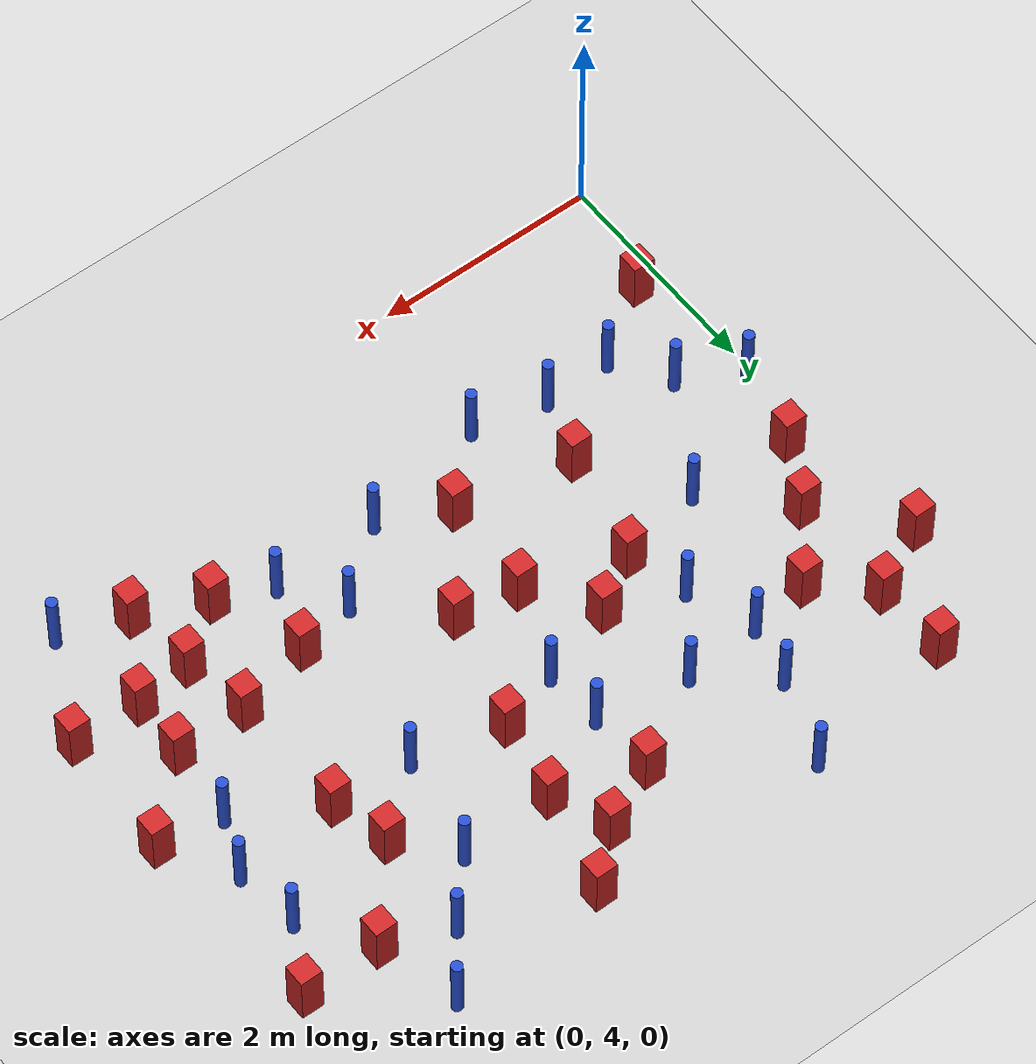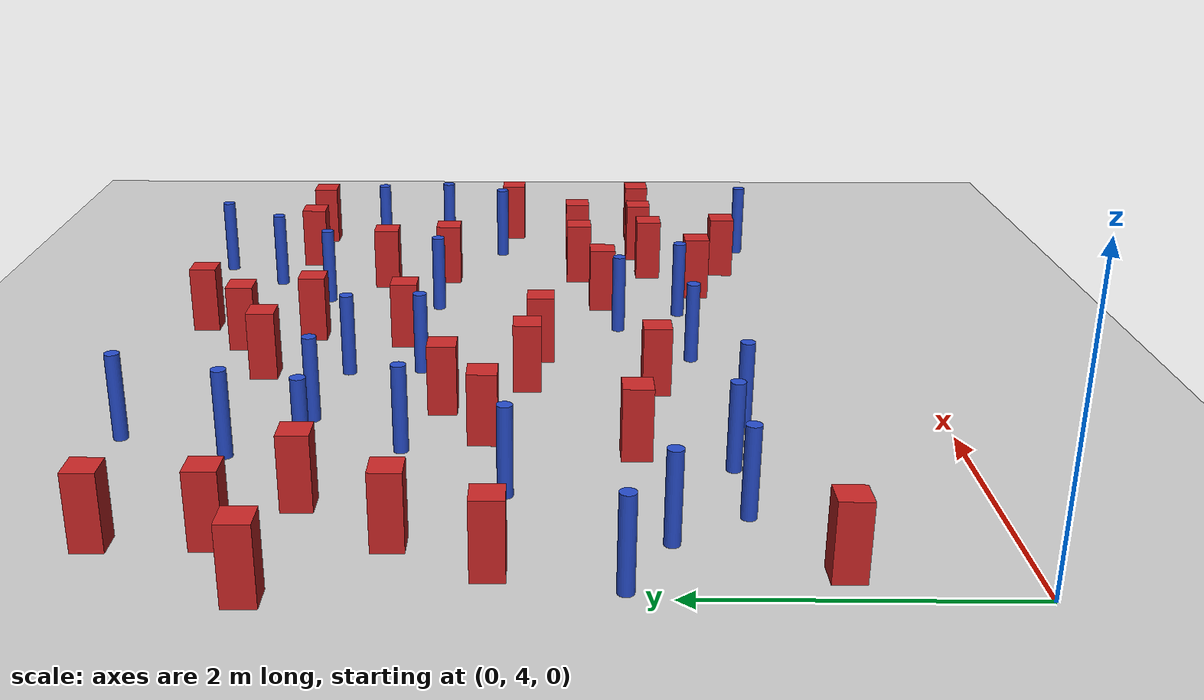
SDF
<sdf version="1.6">
 <world name="default">
  <model name="ground_plane">
   <static>1</static>
   <link name="link">
    <collision name="collision">
     <geometry><plane><normal>0 0 1</normal><size>100 100</size></plane></geometry>
     <surface><friction><ode><mu>100</mu><mu2>50</mu2></ode></friction></surface>
    </collision>
    <visual name="visual">
     <cast_shadows>0</cast_shadows>
     <geometry><plane><normal>0 0 1</normal><size>100 100</size></plane></geometry>
     <material>
      <ambient>1.0 1.0 1.0 1.0</ambient>
      <diffuse>0.8 0.8 0.8 1.0</diffuse>
      <specular>0.01 0.01 0.01 1.000000</specular>
     </material>
    </visual>
   </link>
  </model>
  <model name="square_post_obstacle1">
   <static>true</static>
   <pose>5.37750317819 5.17159049215 1.91545236811e-07 -7.35059704564e-06 1.12565212e-07 2.39332434364e-05</pose>
   <link name="link">
    <pose>0 0 0.25 0 -0 0</pose>
    <inertial>
     <mass>100</mass>
     <inertia>
      <ixx>0.166667</ixx>
      <ixy>0</ixy>
      <ixz>0</ixz>
      <iyy>0.166667</iyy>
      <iyz>0</iyz>
      <izz>0.166667</izz>
     </inertia>
    </inertial>
    <collision name="collision"><geometry><box><size>.2 .2 .5</size></box></geometry></collision>
    <visual name="visual">
     <geometry><box><size>.2 .2 .5</size></box></geometry>
     <material>
      <script><name>Gazebo/Red</name><uri>file://media/materials/scripts/gazebo.material</uri></script>
     </material>
    </visual>
   </link>
  </model>
  <model name="square_post_obstacle14">
   <static>true</static>
   <pose>0.547198968138 9.23532969823 1.91545236811e-07 -7.35059704564e-06 1.12565212e-07 2.39332434364e-05</pose>
   <link name="link">
    <pose>0 0 0.25 0 -0 0</pose>
    <inertial>
     <mass>100</mass>
     <inertia>
      <ixx>0.166667</ixx>
      <ixy>0</ixy>
      <ixz>0</ixz>
      <iyy>0.166667</iyy>
      <iyz>0</iyz>
      <izz>0.166667</izz>
     </inertia>
    </inertial>
    <collision name="collision"><geometry><box><size>.2 .2 .5</size></box></geometry></collision>
    <visual name="visual">
     <geometry><box><size>.2 .2 .5</size></box></geometry>
     <material>
      <script><name>Gazebo/Red</name><uri>file://media/materials/scripts/gazebo.material</uri></script>
     </material>
    </visual>
   </link>
  </model>
  <model name="pole_obstacle29">
   <static>true</static>
   <pose>0.586297997548 5.96548504532 7.38925637345e-09 -8.471706928e-08 1.24976765086e-08 -1.74513093015e-07</pose>
   <link name="link">
    <pose>0 0 0.3 0 -0 0</pose>
    <inertial>
     <mass>1</mass>
     <inertia><ixx>0.145833</ixx><ixy>0</ixy><ixz>0</ixz><iyy>0.145833</iyy><iyz>0</iyz><izz>0.125</izz></inertia>
    </inertial>
    <collision name="collision">
     <geometry><cylinder><radius>0.05</radius><length>.6</length></cylinder></geometry>
    </collision>
    <visual name="visual">
     <geometry><cylinder><radius>0.05</radius><length>.6</length></cylinder></geometry>
     <material>
      <script><name>Gazebo/Blue</name><uri>file://media/materials/scripts/gazebo.material</uri></script>
     </material>
    </visual>
   </link>
  </model>
  <model name="square_post_obstacle22">
   <static>true</static>
   <pose>3.36921713333 6.72272128164 1.91545236811e-07 -7.35059704564e-06 1.12565212e-07 2.39332434364e-05</pose>
   <link name="link">
    <pose>0 0 0.25 0 -0 0</pose>
    <inertial>
     <mass>100</mass>
     <inertia>
      <ixx>0.166667</ixx>
      <ixy>0</ixy>
      <ixz>0</ixz>
      <iyy>0.166667</iyy>
      <iyz>0</iyz>
      <izz>0.166667</izz>
     </inertia>
    </inertial>
    <collision name="collision"><geometry><box><size>.2 .2 .5</size></box></geometry></collision>
    <visual name="visual">
     <geometry><box><size>.2 .2 .5</size></box></geometry>
     <material>
      <script><name>Gazebo/Red</name><uri>file://media/materials/scripts/gazebo.material</uri></script>
     </material>
    </visual>
   </link>
  </model>
  <model name="pole_obstacle37">
   <static>true</static>
   <pose>1.77282647721 7.61099032757 7.38925637345e-09 -8.47170692799e-08 1.24976765033e-08 -1.74513093018e-07</pose>
   <link name="link">
    <pose>0 0 0.3 0 -0 0</pose>
    <inertial>
     <mass>1</mass>
     <inertia><ixx>0.145833</ixx><ixy>0</ixy><ixz>0</ixz><iyy>0.145833</iyy><iyz>0</iyz><izz>0.125</izz></inertia>
    </inertial>
    <collision name="collision">
     <geometry><cylinder><radius>0.05</radius><length>.6</length></cylinder></geometry>
    </collision>
    <visual name="visual">
     <geometry><cylinder><radius>0.05</radius><length>.6</length></cylinder></geometry>
     <material>
      <script><name>Gazebo/Blue</name><uri>file://media/materials/scripts/gazebo.material</uri></script>
     </material>
    </visual>
   </link>
  </model>
  <model name="pole_obstacle42">
   <static>true</static>
   <pose>1.16365076486 6.92392771209 7.38925637345e-09 -8.47170692799e-08 1.24976765033e-08 -1.74513093018e-07</pose>
   <link name="link">
    <pose>0 0 0.3 0 -0 0</pose>
    <inertial>
     <mass>1</mass>
     <inertia><ixx>0.145833</ixx><ixy>0</ixy><ixz>0</ixz><iyy>0.145833</iyy><iyz>0</iyz><izz>0.125</izz></inertia>
    </inertial>
    <collision name="collision">
     <geometry><cylinder><radius>0.05</radius><length>.6</length></cylinder></geometry>
    </collision>
    <visual name="visual">
     <geometry><cylinder><radius>0.05</radius><length>.6</length></cylinder></geometry>
     <material>
      <script><name>Gazebo/Blue</name><uri>file://media/materials/scripts/gazebo.material</uri></script>
     </material>
    </visual>
   </link>
  </model>
  <model name="square_post_obstacle39">
   <static>true</static>
   <pose>3.58698922578 8.97844515525 1.91545236811e-07 -7.35059704564e-06 1.12565212e-07 2.39332434364e-05</pose>
   <link name="link">
    <pose>0 0 0.25 0 -0 0</pose>
    <inertial>
     <mass>100</mass>
     <inertia>
      <ixx>0.166667</ixx>
      <ixy>0</ixy>
      <ixz>0</ixz>
      <iyy>0.166667</iyy>
      <iyz>0</iyz>
      <izz>0.166667</izz>
     </inertia>
    </inertial>
    <collision name="collision"><geometry><box><size>.2 .2 .5</size></box></geometry></collision>
    <visual name="visual">
     <geometry><box><size>.2 .2 .5</size></box></geometry>
     <material>
      <script><name>Gazebo/Red</name><uri>file://media/materials/scripts/gazebo.material</uri></script>
     </material>
    </visual>
   </link>
  </model>
  <model name="pole_obstacle49">
   <static>true</static>
   <pose>6.08698520354 7.57605589199 7.38925637345e-09 -8.47170692796e-08 1.24976764786e-08 -1.74513093032e-07</pose>
   <link name="link">
    <pose>0 0 0.3 0 -0 0</pose>
    <inertial>
     <mass>1</mass>
     <inertia><ixx>0.145833</ixx><ixy>0</ixy><ixz>0</ixz><iyy>0.145833</iyy><iyz>0</iyz><izz>0.125</izz></inertia>
    </inertial>
    <collision name="collision">
     <geometry><cylinder><radius>0.05</radius><length>.6</length></cylinder></geometry>
    </collision>
    <visual name="visual">
     <geometry><cylinder><radius>0.05</radius><length>.6</length></cylinder></geometry>
     <material>
      <script><name>Gazebo/Blue</name><uri>file://media/materials/scripts/gazebo.material</uri></script>
     </material>
    </visual>
   </link>
  </model>
  <model name="pole_obstacle51">
   <static>true</static>
   <pose>2.24795448103 8.24911606674 7.38925637345e-09 -8.47170692793e-08 1.24976764408e-08 -1.74513093041e-07</pose>
   <link name="link">
    <pose>0 0 0.3 0 -0 0</pose>
    <inertial>
     <mass>1</mass>
     <inertia><ixx>0.145833</ixx><ixy>0</ixy><ixz>0</ixz><iyy>0.145833</iyy><iyz>0</iyz><izz>0.125</izz></inertia>
    </inertial>
    <collision name="collision">
     <geometry><cylinder><radius>0.05</radius><length>.6</length></cylinder></geometry>
    </collision>
    <visual name="visual">
     <geometry><cylinder><radius>0.05</radius><length>.6</length></cylinder></geometry>
     <material>
      <script><name>Gazebo/Blue</name><uri>file://media/materials/scripts/gazebo.material</uri></script>
     </material>
    </visual>
   </link>
  </model>
  <model name="pole_obstacle69">
   <static>true</static>
   <pose>5.95983168452 4.94907895417 7.38925637345e-09 -8.47170692796e-08 1.24976764786e-08 -1.74513093032e-07</pose>
   <link name="link">
    <pose>0 0 0.3 0 -0 0</pose>
    <inertial>
     <mass>1</mass>
     <inertia><ixx>0.145833</ixx><ixy>0</ixy><ixz>0</ixz><iyy>0.145833</iyy><iyz>0</iyz><izz>0.125</izz></inertia>
    </inertial>
    <collision name="collision">
     <geometry><cylinder><radius>0.05</radius><length>.6</length></cylinder></geometry>
    </collision>
    <visual name="visual">
     <geometry><cylinder><radius>0.05</radius><length>.6</length></cylinder></geometry>
     <material>
      <script><name>Gazebo/Blue</name><uri>file://media/materials/scripts/gazebo.material</uri></script>
     </material>
    </visual>
   </link>
  </model>
  <model name="square_post_obstacle61">
   <static>true</static>
   <pose>4.00225368192 9.34497348622 1.91545236811e-07 -7.35059704564e-06 1.12565212e-07 2.39332434364e-05</pose>
   <link name="link">
    <pose>0 0 0.25 0 -0 0</pose>
    <inertial>
     <mass>100</mass>
     <inertia>
      <ixx>0.166667</ixx>
      <ixy>0</ixy>
      <ixz>0</ixz>
      <iyy>0.166667</iyy>
      <iyz>0</iyz>
      <izz>0.166667</izz>
     </inertia>
    </inertial>
    <collision name="collision"><geometry><box><size>.2 .2 .5</size></box></geometry></collision>
    <visual name="visual">
     <geometry><box><size>.2 .2 .5</size></box></geometry>
     <material>
      <script><name>Gazebo/Red</name><uri>file://media/materials/scripts/gazebo.material</uri></script>
     </material>
    </visual>
   </link>
  </model>
  <model name="square_post_obstacle62">
   <static>true</static>
   <pose>5.02789357225 8.0316241238 1.91545236811e-07 -7.35059704564e-06 1.12565212e-07 2.39332434364e-05</pose>
   <link name="link">
    <pose>0 0 0.25 0 -0 0</pose>
    <inertial>
     <mass>100</mass>
     <inertia>
      <ixx>0.166667</ixx>
      <ixy>0</ixy>
      <ixz>0</ixz>
      <iyy>0.166667</iyy>
      <iyz>0</iyz>
      <izz>0.166667</izz>
     </inertia>
    </inertial>
    <collision name="collision"><geometry><box><size>.2 .2 .5</size></box></geometry></collision>
    <visual name="visual">
     <geometry><box><size>.2 .2 .5</size></box></geometry>
     <material>
      <script><name>Gazebo/Red</name><uri>file://media/materials/scripts/gazebo.material</uri></script>
     </material>
    </visual>
   </link>
  </model>
  <model name="pole_obstacle77">
   <static>true</static>
   <pose>4.61966512829 8.47260502739 7.38925637345e-09 -8.471706928e-08 1.24976765081e-08 -1.74513093015e-07</pose>
   <link name="link">
    <pose>0 0 0.3 0 -0 0</pose>
    <inertial>
     <mass>1</mass>
     <inertia><ixx>0.145833</ixx><ixy>0</ixy><ixz>0</ixz><iyy>0.145833</iyy><iyz>0</iyz><izz>0.125</izz></inertia>
    </inertial>
    <collision name="collision">
     <geometry><cylinder><radius>0.05</radius><length>.6</length></cylinder></geometry>
    </collision>
    <visual name="visual">
     <geometry><cylinder><radius>0.05</radius><length>.6</length></cylinder></geometry>
     <material>
      <script><name>Gazebo/Blue</name><uri>file://media/materials/scripts/gazebo.material</uri></script>
     </material>
    </visual>
   </link>
  </model>
  <model name="square_post_obstacle70">
   <static>true</static>
   <pose>0.565795823272 7.5615534569 1.91545236811e-07 -7.35059704564e-06 1.12565212e-07 2.39332434364e-05</pose>
   <link name="link">
    <pose>0 0 0.25 0 -0 0</pose>
    <inertial>
     <mass>100</mass>
     <inertia>
      <ixx>0.166667</ixx>
      <ixy>0</ixy>
      <ixz>0</ixz>
      <iyy>0.166667</iyy>
      <iyz>0</iyz>
      <izz>0.166667</izz>
     </inertia>
    </inertial>
    <collision name="collision"><geometry><box><size>.2 .2 .5</size></box></geometry></collision>
    <visual name="visual">
     <geometry><box><size>.2 .2 .5</size></box></geometry>
     <material>
      <script><name>Gazebo/Red</name><uri>file://media/materials/scripts/gazebo.material</uri></script>
     </material>
    </visual>
   </link>
  </model>
  <model name="square_post_obstacle76">
   <static>true</static>
   <pose>6.32650794743 8.72958846974 1.91545236811e-07 -7.35059704564e-06 1.12565212e-07 2.39332434364e-05</pose>
   <link name="link">
    <pose>0 0 0.25 0 -0 0</pose>
    <inertial>
     <mass>100</mass>
     <inertia>
      <ixx>0.166667</ixx>
      <ixy>0</ixy>
      <ixz>0</ixz>
      <iyy>0.166667</iyy>
      <iyz>0</iyz>
      <izz>0.166667</izz>
     </inertia>
    </inertial>
    <collision name="collision"><geometry><box><size>.2 .2 .5</size></box></geometry></collision>
    <visual name="visual">
     <geometry><box><size>.2 .2 .5</size></box></geometry>
     <material>
      <script><name>Gazebo/Red</name><uri>file://media/materials/scripts/gazebo.material</uri></script>
     </material>
    </visual>
   </link>
  </model>
  <model name="square_post_obstacle90">
   <static>true</static>
   <pose>3.03373673388 8.71606683946 1.91545236811e-07 -7.35059704564e-06 1.12565212e-07 2.39332434364e-05</pose>
   <link name="link">
    <pose>0 0 0.25 0 -0 0</pose>
    <inertial>
     <mass>100</mass>
     <inertia>
      <ixx>0.166667</ixx>
      <ixy>0</ixy>
      <ixz>0</ixz>
      <iyy>0.166667</iyy>
      <iyz>0</iyz>
      <izz>0.166667</izz>
     </inertia>
    </inertial>
    <collision name="collision"><geometry><box><size>.2 .2 .5</size></box></geometry></collision>
    <visual name="visual">
     <geometry><box><size>.2 .2 .5</size></box></geometry>
     <material>
      <script><name>Gazebo/Red</name><uri>file://media/materials/scripts/gazebo.material</uri></script>
     </material>
    </visual>
   </link>
  </model>
  <model name="square_post_obstacle92">
   <static>true</static>
   <pose>0.257070789135 5.04999154646 1.91545236811e-07 -7.35059704564e-06 1.12565212e-07 2.39332434364e-05</pose>
   <link name="link">
    <pose>0 0 0.25 0 -0 0</pose>
    <inertial>
     <mass>100</mass>
     <inertia>
      <ixx>0.166667</ixx>
      <ixy>0</ixy>
      <ixz>0</ixz>
      <iyy>0.166667</iyy>
      <iyz>0</iyz>
      <izz>0.166667</izz>
     </inertia>
    </inertial>
    <collision name="collision"><geometry><box><size>.2 .2 .5</size></box></geometry></collision>
    <visual name="visual">
     <geometry><box><size>.2 .2 .5</size></box></geometry>
     <material>
      <script><name>Gazebo/Red</name><uri>file://media/materials/scripts/gazebo.material</uri></script>
     </material>
    </visual>
   </link>
  </model>
  <model name="square_post_obstacle96">
   <static>true</static>
   <pose>4.49552443116 6.22949344212 1.91545236811e-07 -7.35059704564e-06 1.12565212e-07 2.39332434364e-05</pose>
   <link name="link">
    <pose>0 0 0.25 0 -0 0</pose>
    <inertial>
     <mass>100</mass>
     <inertia>
      <ixx>0.166667</ixx>
      <ixy>0</ixy>
      <ixz>0</ixz>
      <iyy>0.166667</iyy>
      <iyz>0</iyz>
      <izz>0.166667</izz>
     </inertia>
    </inertial>
    <collision name="collision"><geometry><box><size>.2 .2 .5</size></box></geometry></collision>
    <visual name="visual">
     <geometry><box><size>.2 .2 .5</size></box></geometry>
     <material>
      <script><name>Gazebo/Red</name><uri>file://media/materials/scripts/gazebo.material</uri></script>
     </material>
    </visual>
   </link>
  </model>
  <model name="square_post_obstacle102">
   <static>true</static>
   <pose>1.71855272838 6.10397751006 1.91545236811e-07 -7.35059704564e-06 1.12565212e-07 2.39332434364e-05</pose>
   <link name="link">
    <pose>0 0 0.25 0 -0 0</pose>
    <inertial>
     <mass>100</mass>
     <inertia>
      <ixx>0.166667</ixx>
      <ixy>0</ixy>
      <ixz>0</ixz>
      <iyy>0.166667</iyy>
      <iyz>0</iyz>
      <izz>0.166667</izz>
     </inertia>
    </inertial>
    <collision name="collision"><geometry><box><size>.2 .2 .5</size></box></geometry></collision>
    <visual name="visual">
     <geometry><box><size>.2 .2 .5</size></box></geometry>
     <material>
      <script><name>Gazebo/Red</name><uri>file://media/materials/scripts/gazebo.material</uri></script>
     </material>
    </visual>
   </link>
  </model>
  <model name="square_post_obstacle105">
   <static>true</static>
   <pose>-0.0146451585218 8.27184922719 1.91545236811e-07 -7.35059704564e-06 1.12565212e-07 2.39332434364e-05</pose>
   <link name="link">
    <pose>0 0 0.25 0 -0 0</pose>
    <inertial>
     <mass>100</mass>
     <inertia>
      <ixx>0.166667</ixx>
      <ixy>0</ixy>
      <ixz>0</ixz>
      <iyy>0.166667</iyy>
      <iyz>0</iyz>
      <izz>0.166667</izz>
     </inertia>
    </inertial>
    <collision name="collision"><geometry><box><size>.2 .2 .5</size></box></geometry></collision>
    <visual name="visual">
     <geometry><box><size>.2 .2 .5</size></box></geometry>
     <material>
      <script><name>Gazebo/Red</name><uri>file://media/materials/scripts/gazebo.material</uri></script>
     </material>
    </visual>
   </link>
  </model>
  <model name="pole_obstacle112">
   <static>true</static>
   <pose>2.17773305065 5.3601025892 7.38925637345e-09 -8.47170692798e-08 1.24976765033e-08 -1.74513093019e-07</pose>
   <link name="link">
    <pose>0 0 0.3 0 -0 0</pose>
    <inertial>
     <mass>1</mass>
     <inertia><ixx>0.145833</ixx><ixy>0</ixy><ixz>0</ixz><iyy>0.145833</iyy><iyz>0</iyz><izz>0.125</izz></inertia>
    </inertial>
    <collision name="collision">
     <geometry><cylinder><radius>0.05</radius><length>.6</length></cylinder></geometry>
    </collision>
    <visual name="visual">
     <geometry><cylinder><radius>0.05</radius><length>.6</length></cylinder></geometry>
     <material>
      <script><name>Gazebo/Blue</name><uri>file://media/materials/scripts/gazebo.material</uri></script>
     </material>
    </visual>
   </link>
  </model>
  <model name="square_post_obstacle115">
   <static>true</static>
   <pose>4.79656661867 5.44153845206 1.91545236811e-07 -7.35059704564e-06 1.12565212e-07 2.39332434364e-05</pose>
   <link name="link">
    <pose>0 0 0.25 0 -0 0</pose>
    <inertial>
     <mass>100</mass>
     <inertia>
      <ixx>0.166667</ixx>
      <ixy>0</ixy>
      <ixz>0</ixz>
      <iyy>0.166667</iyy>
      <iyz>0</iyz>
      <izz>0.166667</izz>
     </inertia>
    </inertial>
    <collision name="collision"><geometry><box><size>.2 .2 .5</size></box></geometry></collision>
    <visual name="visual">
     <geometry><box><size>.2 .2 .5</size></box></geometry>
     <material>
      <script><name>Gazebo/Red</name><uri>file://media/materials/scripts/gazebo.material</uri></script>
     </material>
    </visual>
   </link>
  </model>
  <model name="square_post_obstacle118">
   <static>true</static>
   <pose>5.62764347946 8.73173779954 1.91545236811e-07 -7.35059704564e-06 1.12565212e-07 2.39332434364e-05</pose>
   <link name="link">
    <pose>0 0 0.25 0 -0 0</pose>
    <inertial>
     <mass>100</mass>
     <inertia>
      <ixx>0.166667</ixx>
      <ixy>0</ixy>
      <ixz>0</ixz>
      <iyy>0.166667</iyy>
      <iyz>0</iyz>
      <izz>0.166667</izz>
     </inertia>
    </inertial>
    <collision name="collision"><geometry><box><size>.2 .2 .5</size></box></geometry></collision>
    <visual name="visual">
     <geometry><box><size>.2 .2 .5</size></box></geometry>
     <material>
      <script><name>Gazebo/Red</name><uri>file://media/materials/scripts/gazebo.material</uri></script>
     </material>
    </visual>
   </link>
  </model>
  <model name="pole_obstacle121">
   <static>true</static>
   <pose>3.33480364065 5.60509714139 7.38925637345e-09 -8.47170692798e-08 1.24976765033e-08 -1.74513093019e-07</pose>
   <link name="link">
    <pose>0 0 0.3 0 -0 0</pose>
    <inertial>
     <mass>1</mass>
     <inertia><ixx>0.145833</ixx><ixy>0</ixy><ixz>0</ixz><iyy>0.145833</iyy><iyz>0</iyz><izz>0.125</izz></inertia>
    </inertial>
    <collision name="collision">
     <geometry><cylinder><radius>0.05</radius><length>.6</length></cylinder></geometry>
    </collision>
    <visual name="visual">
     <geometry><cylinder><radius>0.05</radius><length>.6</length></cylinder></geometry>
     <material>
      <script><name>Gazebo/Blue</name><uri>file://media/materials/scripts/gazebo.material</uri></script>
     </material>
    </visual>
   </link>
  </model>
  <model name="pole_obstacle122">
   <static>true</static>
   <pose>1.51848824607 5.50477156299 7.38925637345e-09 -8.47170692799e-08 1.24976765033e-08 -1.74513093018e-07</pose>
   <link name="link">
    <pose>0 0 0.3 0 -0 0</pose>
    <inertial>
     <mass>1</mass>
     <inertia><ixx>0.145833</ixx><ixy>0</ixy><ixz>0</ixz><iyy>0.145833</iyy><iyz>0</iyz><izz>0.125</izz></inertia>
    </inertial>
    <collision name="collision">
     <geometry><cylinder><radius>0.05</radius><length>.6</length></cylinder></geometry>
    </collision>
    <visual name="visual">
     <geometry><cylinder><radius>0.05</radius><length>.6</length></cylinder></geometry>
     <material>
      <script><name>Gazebo/Blue</name><uri>file://media/materials/scripts/gazebo.material</uri></script>
     </material>
    </visual>
   </link>
  </model>
  <model name="square_post_obstacle126">
   <static>true</static>
   <pose>5.15368365662 7.51588712584 1.91545236811e-07 -7.35059704564e-06 1.12565212e-07 2.39332434364e-05</pose>
   <link name="link">
    <pose>0 0 0.25 0 -0 0</pose>
    <inertial>
     <mass>100</mass>
     <inertia>
      <ixx>0.166667</ixx>
      <ixy>0</ixy>
      <ixz>0</ixz>
      <iyy>0.166667</iyy>
      <iyz>0</iyz>
      <izz>0.166667</izz>
     </inertia>
    </inertial>
    <collision name="collision"><geometry><box><size>.2 .2 .5</size></box></geometry></collision>
    <visual name="visual">
     <geometry><box><size>.2 .2 .5</size></box></geometry>
     <material>
      <script><name>Gazebo/Red</name><uri>file://media/materials/scripts/gazebo.material</uri></script>
     </material>
    </visual>
   </link>
  </model>
  <model name="square_post_obstacle129">
   <static>true</static>
   <pose>1.94047282931 7.09104585083 1.91545236811e-07 -7.35059704564e-06 1.12565212e-07 2.39332434364e-05</pose>
   <link name="link">
    <pose>0 0 0.25 0 -0 0</pose>
    <inertial>
     <mass>100</mass>
     <inertia>
      <ixx>0.166667</ixx>
      <ixy>0</ixy>
      <ixz>0</ixz>
      <iyy>0.166667</iyy>
      <iyz>0</iyz>
      <izz>0.166667</izz>
     </inertia>
    </inertial>
    <collision name="collision"><geometry><box><size>.2 .2 .5</size></box></geometry></collision>
    <visual name="visual">
     <geometry><box><size>.2 .2 .5</size></box></geometry>
     <material>
      <script><name>Gazebo/Red</name><uri>file://media/materials/scripts/gazebo.material</uri></script>
     </material>
    </visual>
   </link>
  </model>
  <model name="square_post_obstacle131">
   <static>true</static>
   <pose>2.41633967863 7.38311618193 1.91545236811e-07 -7.35059704564e-06 1.12565212e-07 2.39332434364e-05</pose>
   <link name="link">
    <pose>0 0 0.25 0 -0 0</pose>
    <inertial>
     <mass>100</mass>
     <inertia>
      <ixx>0.166667</ixx>
      <ixy>0</ixy>
      <ixz>0</ixz>
      <iyy>0.166667</iyy>
      <iyz>0</iyz>
      <izz>0.166667</izz>
     </inertia>
    </inertial>
    <collision name="collision"><geometry><box><size>.2 .2 .5</size></box></geometry></collision>
    <visual name="visual">
     <geometry><box><size>.2 .2 .5</size></box></geometry>
     <material>
      <script><name>Gazebo/Red</name><uri>file://media/materials/scripts/gazebo.material</uri></script>
     </material>
    </visual>
   </link>
  </model>
  <model name="pole_obstacle133">
   <static>true</static>
   <pose>3.06364774103 8.11160599726 7.38925637345e-09 -8.47170692793e-08 1.24976764408e-08 -1.74513093041e-07</pose>
   <link name="link">
    <pose>0 0 0.3 0 -0 0</pose>
    <inertial>
     <mass>1</mass>
     <inertia><ixx>0.145833</ixx><ixy>0</ixy><ixz>0</ixz><iyy>0.145833</iyy><iyz>0</iyz><izz>0.125</izz></inertia>
    </inertial>
    <collision name="collision">
     <geometry><cylinder><radius>0.05</radius><length>.6</length></cylinder></geometry>
    </collision>
    <visual name="visual">
     <geometry><cylinder><radius>0.05</radius><length>.6</length></cylinder></geometry>
     <material>
      <script><name>Gazebo/Blue</name><uri>file://media/materials/scripts/gazebo.material</uri></script>
     </material>
    </visual>
   </link>
  </model>
  <model name="pole_obstacle135">
   <static>true</static>
   <pose>6.01307895608 8.1522469615 7.38925637345e-09 -8.471706928e-08 1.24976765081e-08 -1.74513093015e-07</pose>
   <link name="link">
    <pose>0 0 0.3 0 -0 0</pose>
    <inertial>
     <mass>1</mass>
     <inertia><ixx>0.145833</ixx><ixy>0</ixy><ixz>0</ixz><iyy>0.145833</iyy><iyz>0</iyz><izz>0.125</izz></inertia>
    </inertial>
    <collision name="collision">
     <geometry><cylinder><radius>0.05</radius><length>.6</length></cylinder></geometry>
    </collision>
    <visual name="visual">
     <geometry><cylinder><radius>0.05</radius><length>.6</length></cylinder></geometry>
     <material>
      <script><name>Gazebo/Blue</name><uri>file://media/materials/scripts/gazebo.material</uri></script>
     </material>
    </visual>
   </link>
  </model>
  <model name="pole_obstacle138">
   <static>true</static>
   <pose>1.55786191356 8.20924069895 7.38925637345e-09 -8.47170692798e-08 1.24976764881e-08 -1.74513093027e-07</pose>
   <link name="link">
    <pose>0 0 0.3 0 -0 0</pose>
    <inertial>
     <mass>1</mass>
     <inertia><ixx>0.145833</ixx><ixy>0</ixy><ixz>0</ixz><iyy>0.145833</iyy><iyz>0</iyz><izz>0.125</izz></inertia>
    </inertial>
    <collision name="collision">
     <geometry><cylinder><radius>0.05</radius><length>.6</length></cylinder></geometry>
    </collision>
    <visual name="visual">
     <geometry><cylinder><radius>0.05</radius><length>.6</length></cylinder></geometry>
     <material>
      <script><name>Gazebo/Blue</name><uri>file://media/materials/scripts/gazebo.material</uri></script>
     </material>
    </visual>
   </link>
  </model>
  <model name="square_post_obstacle145">
   <static>true</static>
   <pose>0.251841510241 6.99074663012 1.91545236811e-07 -7.35059704564e-06 1.12565212e-07 2.39332434364e-05</pose>
   <link name="link">
    <pose>0 0 0.25 0 -0 0</pose>
    <inertial>
     <mass>100</mass>
     <inertia>
      <ixx>0.166667</ixx>
      <ixy>0</ixy>
      <ixz>0</ixz>
      <iyy>0.166667</iyy>
      <iyz>0</iyz>
      <izz>0.166667</izz>
     </inertia>
    </inertial>
    <collision name="collision"><geometry><box><size>.2 .2 .5</size></box></geometry></collision>
    <visual name="visual">
     <geometry><box><size>.2 .2 .5</size></box></geometry>
     <material>
      <script><name>Gazebo/Red</name><uri>file://media/materials/scripts/gazebo.material</uri></script>
     </material>
    </visual>
   </link>
  </model>
  <model name="square_post_obstacle148">
   <static>true</static>
   <pose>5.79992372524 5.86717437443 1.91545236811e-07 -7.35059704564e-06 1.12565212e-07 2.39332434364e-05</pose>
   <link name="link">
    <pose>0 0 0.25 0 -0 0</pose>
    <inertial>
     <mass>100</mass>
     <inertia>
      <ixx>0.166667</ixx>
      <ixy>0</ixy>
      <ixz>0</ixz>
      <iyy>0.166667</iyy>
      <iyz>0</iyz>
      <izz>0.166667</izz>
     </inertia>
    </inertial>
    <collision name="collision"><geometry><box><size>.2 .2 .5</size></box></geometry></collision>
    <visual name="visual">
     <geometry><box><size>.2 .2 .5</size></box></geometry>
     <material>
      <script><name>Gazebo/Red</name><uri>file://media/materials/scripts/gazebo.material</uri></script>
     </material>
    </visual>
   </link>
  </model>
  <model name="square_post_obstacle152">
   <static>true</static>
   <pose>6.4474535687 6.98900312784 1.91545236811e-07 -7.35059704564e-06 1.12565212e-07 2.39332434364e-05</pose>
   <link name="link">
    <pose>0 0 0.25 0 -0 0</pose>
    <inertial>
     <mass>100</mass>
     <inertia>
      <ixx>0.166667</ixx>
      <ixy>0</ixy>
      <ixz>0</ixz>
      <iyy>0.166667</iyy>
      <iyz>0</iyz>
      <izz>0.166667</izz>
     </inertia>
    </inertial>
    <collision name="collision"><geometry><box><size>.2 .2 .5</size></box></geometry></collision>
    <visual name="visual">
     <geometry><box><size>.2 .2 .5</size></box></geometry>
     <material>
      <script><name>Gazebo/Red</name><uri>file://media/materials/scripts/gazebo.material</uri></script>
     </material>
    </visual>
   </link>
  </model>
  <model name="square_post_obstacle154">
   <static>true</static>
   <pose>3.79819388218 8.46985258886 1.91545236811e-07 -7.35059704564e-06 1.12565212e-07 2.39332434364e-05</pose>
   <link name="link">
    <pose>0 0 0.25 0 -0 0</pose>
    <inertial>
     <mass>100</mass>
     <inertia>
      <ixx>0.166667</ixx>
      <ixy>0</ixy>
      <ixz>0</ixz>
      <iyy>0.166667</iyy>
      <iyz>0</iyz>
      <izz>0.166667</izz>
     </inertia>
    </inertial>
    <collision name="collision"><geometry><box><size>.2 .2 .5</size></box></geometry></collision>
    <visual name="visual">
     <geometry><box><size>.2 .2 .5</size></box></geometry>
     <material>
      <script><name>Gazebo/Red</name><uri>file://media/materials/scripts/gazebo.material</uri></script>
     </material>
    </visual>
   </link>
  </model>
  <model name="square_post_obstacle164">
   <static>true</static>
   <pose>2.81412103135 6.81400808745 1.91545236811e-07 -7.35059704564e-06 1.12565212e-07 2.39332434364e-05</pose>
   <link name="link">
    <pose>0 0 0.25 0 -0 0</pose>
    <inertial>
     <mass>100</mass>
     <inertia>
      <ixx>0.166667</ixx>
      <ixy>0</ixy>
      <ixz>0</ixz>
      <iyy>0.166667</iyy>
      <iyz>0</iyz>
      <izz>0.166667</izz>
     </inertia>
    </inertial>
    <collision name="collision"><geometry><box><size>.2 .2 .5</size></box></geometry></collision>
    <visual name="visual">
     <geometry><box><size>.2 .2 .5</size></box></geometry>
     <material>
      <script><name>Gazebo/Red</name><uri>file://media/materials/scripts/gazebo.material</uri></script>
     </material>
    </visual>
   </link>
  </model>
  <model name="square_post_obstacle167">
   <static>true</static>
   <pose>1.02733361054 8.14476046046 1.91545236811e-07 -7.35059704564e-06 1.12565212e-07 2.39332434364e-05</pose>
   <link name="link">
    <pose>0 0 0.25 0 -0 0</pose>
    <inertial>
     <mass>100</mass>
     <inertia>
      <ixx>0.166667</ixx>
      <ixy>0</ixy>
      <ixz>0</ixz>
      <iyy>0.166667</iyy>
      <iyz>0</iyz>
      <izz>0.166667</izz>
     </inertia>
    </inertial>
    <collision name="collision"><geometry><box><size>.2 .2 .5</size></box></geometry></collision>
    <visual name="visual">
     <geometry><box><size>.2 .2 .5</size></box></geometry>
     <material>
      <script><name>Gazebo/Red</name><uri>file://media/materials/scripts/gazebo.material</uri></script>
     </material>
    </visual>
   </link>
  </model>
  <model name="square_post_obstacle170">
   <static>true</static>
   <pose>6.41249476119 5.85255074254 1.91545236811e-07 -7.35059704564e-06 1.12565212e-07 2.39332434364e-05</pose>
   <link name="link">
    <pose>0 0 0.25 0 -0 0</pose>
    <inertial>
     <mass>100</mass>
     <inertia>
      <ixx>0.166667</ixx>
      <ixy>0</ixy>
      <ixz>0</ixz>
      <iyy>0.166667</iyy>
      <iyz>0</iyz>
      <izz>0.166667</izz>
     </inertia>
    </inertial>
    <collision name="collision"><geometry><box><size>.2 .2 .5</size></box></geometry></collision>
    <visual name="visual">
     <geometry><box><size>.2 .2 .5</size></box></geometry>
     <material>
      <script><name>Gazebo/Red</name><uri>file://media/materials/scripts/gazebo.material</uri></script>
     </material>
    </visual>
   </link>
  </model>
  <model name="pole_obstacle170">
   <static>true</static>
   <pose>1.68117108186 8.72485445411 7.38925637345e-09 -8.47170692798e-08 1.24976764881e-08 -1.74513093027e-07</pose>
   <link name="link">
    <pose>0 0 0.3 0 -0 0</pose>
    <inertial>
     <mass>1</mass>
     <inertia><ixx>0.145833</ixx><ixy>0</ixy><ixz>0</ixz><iyy>0.145833</iyy><iyz>0</iyz><izz>0.125</izz></inertia>
    </inertial>
    <collision name="collision">
     <geometry><cylinder><radius>0.05</radius><length>.6</length></cylinder></geometry>
    </collision>
    <visual name="visual">
     <geometry><cylinder><radius>0.05</radius><length>.6</length></cylinder></geometry>
     <material>
      <script><name>Gazebo/Blue</name><uri>file://media/materials/scripts/gazebo.material</uri></script>
     </material>
    </visual>
   </link>
  </model>
  <model name="pole_obstacle172">
   <static>true</static>
   <pose>1.94165436923 9.46624593029 7.38925637345e-09 -8.47170692798e-08 1.24976764881e-08 -1.74513093027e-07</pose>
   <link name="link">
    <pose>0 0 0.3 0 -0 0</pose>
    <inertial>
     <mass>1</mass>
     <inertia><ixx>0.145833</ixx><ixy>0</ixy><ixz>0</ixz><iyy>0.145833</iyy><iyz>0</iyz><izz>0.125</izz></inertia>
    </inertial>
    <collision name="collision">
     <geometry><cylinder><radius>0.05</radius><length>.6</length></cylinder></geometry>
    </collision>
    <visual name="visual">
     <geometry><cylinder><radius>0.05</radius><length>.6</length></cylinder></geometry>
     <material>
      <script><name>Gazebo/Blue</name><uri>file://media/materials/scripts/gazebo.material</uri></script>
     </material>
    </visual>
   </link>
  </model>
  <model name="pole_obstacle176">
   <static>true</static>
   <pose>5.437168798 9.45159406421 7.38925637345e-09 -8.471706928e-08 1.24976765081e-08 -1.74513093015e-07</pose>
   <link name="link">
    <pose>0 0 0.3 0 -0 0</pose>
    <inertial>
     <mass>1</mass>
     <inertia><ixx>0.145833</ixx><ixy>0</ixy><ixz>0</ixz><iyy>0.145833</iyy><iyz>0</iyz><izz>0.125</izz></inertia>
    </inertial>
    <collision name="collision">
     <geometry><cylinder><radius>0.05</radius><length>.6</length></cylinder></geometry>
    </collision>
    <visual name="visual">
     <geometry><cylinder><radius>0.05</radius><length>.6</length></cylinder></geometry>
     <material>
      <script><name>Gazebo/Blue</name><uri>file://media/materials/scripts/gazebo.material</uri></script>
     </material>
    </visual>
   </link>
  </model>
  <model name="square_post_obstacle174">
   <static>true</static>
   <pose>2.75735604477 5.90713980233 1.91545236811e-07 -7.35059704564e-06 1.12565212e-07 2.39332434364e-05</pose>
   <link name="link">
    <pose>0 0 0.25 0 -0 0</pose>
    <inertial>
     <mass>100</mass>
     <inertia>
      <ixx>0.166667</ixx>
      <ixy>0</ixy>
      <ixz>0</ixz>
      <iyy>0.166667</iyy>
      <iyz>0</iyz>
      <izz>0.166667</izz>
     </inertia>
    </inertial>
    <collision name="collision"><geometry><box><size>.2 .2 .5</size></box></geometry></collision>
    <visual name="visual">
     <geometry><box><size>.2 .2 .5</size></box></geometry>
     <material>
      <script><name>Gazebo/Red</name><uri>file://media/materials/scripts/gazebo.material</uri></script>
     </material>
    </visual>
   </link>
  </model>
  <model name="square_post_obstacle179">
   <static>true</static>
   <pose>0.569259937223 8.57545504606 1.91545236811e-07 -7.35059704564e-06 1.12565212e-07 2.39332434364e-05</pose>
   <link name="link">
    <pose>0 0 0.25 0 -0 0</pose>
    <inertial>
     <mass>100</mass>
     <inertia>
      <ixx>0.166667</ixx>
      <ixy>0</ixy>
      <ixz>0</ixz>
      <iyy>0.166667</iyy>
      <iyz>0</iyz>
      <izz>0.166667</izz>
     </inertia>
    </inertial>
    <collision name="collision"><geometry><box><size>.2 .2 .5</size></box></geometry></collision>
    <visual name="visual">
     <geometry><box><size>.2 .2 .5</size></box></geometry>
     <material>
      <script><name>Gazebo/Red</name><uri>file://media/materials/scripts/gazebo.material</uri></script>
     </material>
    </visual>
   </link>
  </model>
  <model name="square_post_obstacle185">
   <static>true</static>
   <pose>5.82775380799 6.40800450776 1.91545236811e-07 -7.35059704564e-06 1.12565212e-07 2.39332434364e-05</pose>
   <link name="link">
    <pose>0 0 0.25 0 -0 0</pose>
    <inertial>
     <mass>100</mass>
     <inertia>
      <ixx>0.166667</ixx>
      <ixy>0</ixy>
      <ixz>0</ixz>
      <iyy>0.166667</iyy>
      <iyz>0</iyz>
      <izz>0.166667</izz>
     </inertia>
    </inertial>
    <collision name="collision"><geometry><box><size>.2 .2 .5</size></box></geometry></collision>
    <visual name="visual">
     <geometry><box><size>.2 .2 .5</size></box></geometry>
     <material>
      <script><name>Gazebo/Red</name><uri>file://media/materials/scripts/gazebo.material</uri></script>
     </material>
    </visual>
   </link>
  </model>
  <model name="square_post_obstacle193">
   <static>true</static>
   <pose>5.29564354718 5.80721846451 1.91545236811e-07 -7.35059704564e-06 1.12565212e-07 2.39332434364e-05</pose>
   <link name="link">
    <pose>0 0 0.25 0 -0 0</pose>
    <inertial>
     <mass>100</mass>
     <inertia>
      <ixx>0.166667</ixx>
      <ixy>0</ixy>
      <ixz>0</ixz>
      <iyy>0.166667</iyy>
      <iyz>0</iyz>
      <izz>0.166667</izz>
     </inertia>
    </inertial>
    <collision name="collision"><geometry><box><size>.2 .2 .5</size></box></geometry></collision>
    <visual name="visual">
     <geometry><box><size>.2 .2 .5</size></box></geometry>
     <material>
      <script><name>Gazebo/Red</name><uri>file://media/materials/scripts/gazebo.material</uri></script>
     </material>
    </visual>
   </link>
  </model>
  <model name="pole_obstacle190">
   <static>true</static>
   <pose>4.4435121219 7.55509286888 7.38925637345e-09 -8.47170692796e-08 1.24976764786e-08 -1.74513093032e-07</pose>
   <link name="link">
    <pose>0 0 0.3 0 -0 0</pose>
    <inertial>
     <mass>1</mass>
     <inertia><ixx>0.145833</ixx><ixy>0</ixy><ixz>0</ixz><iyy>0.145833</iyy><iyz>0</iyz><izz>0.125</izz></inertia>
    </inertial>
    <collision name="collision">
     <geometry><cylinder><radius>0.05</radius><length>.6</length></cylinder></geometry>
    </collision>
    <visual name="visual">
     <geometry><cylinder><radius>0.05</radius><length>.6</length></cylinder></geometry>
     <material>
      <script><name>Gazebo/Blue</name><uri>file://media/materials/scripts/gazebo.material</uri></script>
     </material>
    </visual>
   </link>
  </model>
  <model name="square_post_obstacle198">
   <static>true</static>
   <pose>3.65932892564 7.75577081978 1.91545236811e-07 -7.35059704564e-06 1.12565212e-07 2.39332434364e-05</pose>
   <link name="link">
    <pose>0 0 0.25 0 -0 0</pose>
    <inertial>
     <mass>100</mass>
     <inertia>
      <ixx>0.166667</ixx>
      <ixy>0</ixy>
      <ixz>0</ixz>
      <iyy>0.166667</iyy>
      <iyz>0</iyz>
      <izz>0.166667</izz>
     </inertia>
    </inertial>
    <collision name="collision"><geometry><box><size>.2 .2 .5</size></box></geometry></collision>
    <visual name="visual">
     <geometry><box><size>.2 .2 .5</size></box></geometry>
     <material>
      <script><name>Gazebo/Red</name><uri>file://media/materials/scripts/gazebo.material</uri></script>
     </material>
    </visual>
   </link>
  </model>
  <model name="square_post_obstacle205">
   <static>true</static>
   <pose>5.18396340785 6.4057185871 1.91545236811e-07 -7.35059704564e-06 1.12565212e-07 2.39332434364e-05</pose>
   <link name="link">
    <pose>0 0 0.25 0 -0 0</pose>
    <inertial>
     <mass>100</mass>
     <inertia>
      <ixx>0.166667</ixx>
      <ixy>0</ixy>
      <ixz>0</ixz>
      <iyy>0.166667</iyy>
      <iyz>0</iyz>
      <izz>0.166667</izz>
     </inertia>
    </inertial>
    <collision name="collision"><geometry><box><size>.2 .2 .5</size></box></geometry></collision>
    <visual name="visual">
     <geometry><box><size>.2 .2 .5</size></box></geometry>
     <material>
      <script><name>Gazebo/Red</name><uri>file://media/materials/scripts/gazebo.material</uri></script>
     </material>
    </visual>
   </link>
  </model>
  <model name="pole_obstacle193">
   <static>true</static>
   <pose>0.901448276723 5.49292979919 7.38925637345e-09 -8.471706928e-08 1.24976765086e-08 -1.74513093015e-07</pose>
   <link name="link">
    <pose>0 0 0.3 0 -0 0</pose>
    <inertial>
     <mass>1</mass>
     <inertia><ixx>0.145833</ixx><ixy>0</ixy><ixz>0</ixz><iyy>0.145833</iyy><iyz>0</iyz><izz>0.125</izz></inertia>
    </inertial>
    <collision name="collision">
     <geometry><cylinder><radius>0.05</radius><length>.6</length></cylinder></geometry>
    </collision>
    <visual name="visual">
     <geometry><cylinder><radius>0.05</radius><length>.6</length></cylinder></geometry>
     <material>
      <script><name>Gazebo/Blue</name><uri>file://media/materials/scripts/gazebo.material</uri></script>
     </material>
    </visual>
   </link>
  </model>
  <model name="pole_obstacle206">
   <static>true</static>
   <pose>5.87950430023 7.08044033073 7.38925637345e-09 -8.47170692796e-08 1.24976764786e-08 -1.74513093032e-07</pose>
   <link name="link">
    <pose>0 0 0.3 0 -0 0</pose>
    <inertial>
     <mass>1</mass>
     <inertia><ixx>0.145833</ixx><ixy>0</ixy><ixz>0</ixz><iyy>0.145833</iyy><iyz>0</iyz><izz>0.125</izz></inertia>
    </inertial>
    <collision name="collision">
     <geometry><cylinder><radius>0.05</radius><length>.6</length></cylinder></geometry>
    </collision>
    <visual name="visual">
     <geometry><cylinder><radius>0.05</radius><length>.6</length></cylinder></geometry>
     <material>
      <script><name>Gazebo/Blue</name><uri>file://media/materials/scripts/gazebo.material</uri></script>
     </material>
    </visual>
   </link>
  </model>
  <model name="pole_obstacle208">
   <static>true</static>
   <pose>5.05204858677 8.94677269259 7.38925637345e-09 -8.471706928e-08 1.24976765081e-08 -1.74513093015e-07</pose>
   <link name="link">
    <pose>0 0 0.3 0 -0 0</pose>
    <inertial>
     <mass>1</mass>
     <inertia><ixx>0.145833</ixx><ixy>0</ixy><ixz>0</ixz><iyy>0.145833</iyy><iyz>0</iyz><izz>0.125</izz></inertia>
    </inertial>
    <collision name="collision">
     <geometry><cylinder><radius>0.05</radius><length>.6</length></cylinder></geometry>
    </collision>
    <visual name="visual">
     <geometry><cylinder><radius>0.05</radius><length>.6</length></cylinder></geometry>
     <material>
      <script><name>Gazebo/Blue</name><uri>file://media/materials/scripts/gazebo.material</uri></script>
     </material>
    </visual>
   </link>
  </model>
  <model name="pole_obstacle209">
   <static>true</static>
   <pose>3.10212104392 7.58941410526 7.38925637345e-09 -8.47170692798e-08 1.24976765033e-08 -1.74513093019e-07</pose>
   <link name="link">
    <pose>0 0 0.3 0 -0 0</pose>
    <inertial>
     <mass>1</mass>
     <inertia><ixx>0.145833</ixx><ixy>0</ixy><ixz>0</ixz><iyy>0.145833</iyy><iyz>0</iyz><izz>0.125</izz></inertia>
    </inertial>
    <collision name="collision">
     <geometry><cylinder><radius>0.05</radius><length>.6</length></cylinder></geometry>
    </collision>
    <visual name="visual">
     <geometry><cylinder><radius>0.05</radius><length>.6</length></cylinder></geometry>
     <material>
      <script><name>Gazebo/Blue</name><uri>file://media/materials/scripts/gazebo.material</uri></script>
     </material>
    </visual>
   </link>
  </model>
  <model name="pole_obstacle222">
   <static>true</static>
   <pose>3.96012011568 6.11858325169 7.38925637345e-09 -8.47170692798e-08 1.24976764915e-08 -1.74513093026e-07</pose>
   <link name="link">
    <pose>0 0 0.3 0 -0 0</pose>
    <inertial>
     <mass>1</mass>
     <inertia><ixx>0.145833</ixx><ixy>0</ixy><ixz>0</ixz><iyy>0.145833</iyy><iyz>0</iyz><izz>0.125</izz></inertia>
    </inertial>
    <collision name="collision">
     <geometry><cylinder><radius>0.05</radius><length>.6</length></cylinder></geometry>
    </collision>
    <visual name="visual">
     <geometry><cylinder><radius>0.05</radius><length>.6</length></cylinder></geometry>
     <material>
      <script><name>Gazebo/Blue</name><uri>file://media/materials/scripts/gazebo.material</uri></script>
     </material>
    </visual>
   </link>
  </model>
  <model name="pole_obstacle224">
   <static>true</static>
   <pose>4.30319305629 5.62374286621 7.38925637345e-09 -8.47170692796e-08 1.24976764786e-08 -1.74513093032e-07</pose>
   <link name="link">
    <pose>0 0 0.3 0 -0 0</pose>
    <inertial>
     <mass>1</mass>
     <inertia><ixx>0.145833</ixx><ixy>0</ixy><ixz>0</ixz><iyy>0.145833</iyy><iyz>0</iyz><izz>0.125</izz></inertia>
    </inertial>
    <collision name="collision">
     <geometry><cylinder><radius>0.05</radius><length>.6</length></cylinder></geometry>
    </collision>
    <visual name="visual">
     <geometry><cylinder><radius>0.05</radius><length>.6</length></cylinder></geometry>
     <material>
      <script><name>Gazebo/Blue</name><uri>file://media/materials/scripts/gazebo.material</uri></script>
     </material>
    </visual>
   </link>
  </model>
  <model name="pole_obstacle226">
   <static>true</static>
   <pose>0.0710677453444 6.25301438711 7.38925637345e-09 -8.47170692798e-08 1.24976765034e-08 -1.74513093019e-07</pose>
   <link name="link">
    <pose>0 0 0.3 0 -0 0</pose>
    <inertial>
     <mass>1</mass>
     <inertia><ixx>0.145833</ixx><ixy>0</ixy><ixz>0</ixz><iyy>0.145833</iyy><iyz>0</iyz><izz>0.125</izz></inertia>
    </inertial>
    <collision name="collision">
     <geometry><cylinder><radius>0.05</radius><length>.6</length></cylinder></geometry>
    </collision>
    <visual name="visual">
     <geometry><cylinder><radius>0.05</radius><length>.6</length></cylinder></geometry>
     <material>
      <script><name>Gazebo/Blue</name><uri>file://media/materials/scripts/gazebo.material</uri></script>
     </material>
    </visual>
   </link>
  </model>
 </world>
</sdf>
